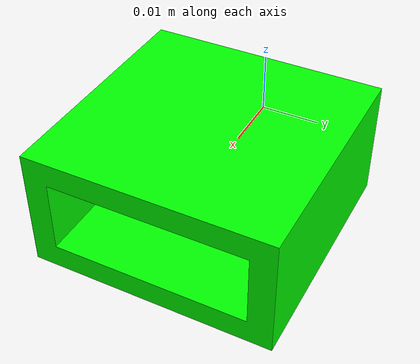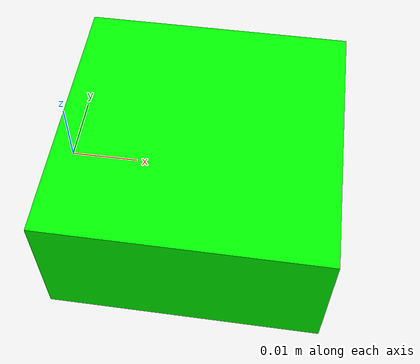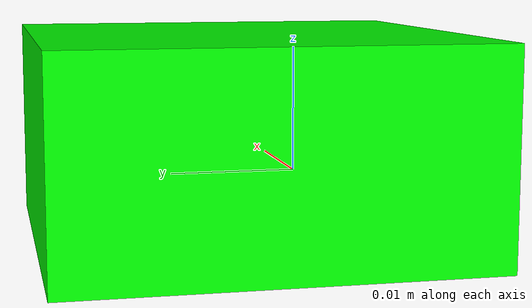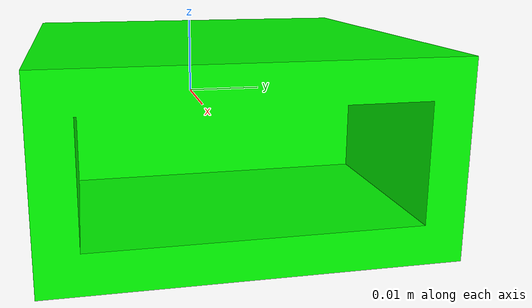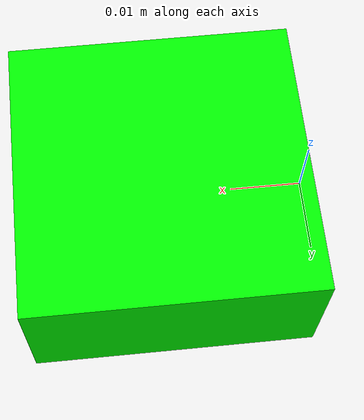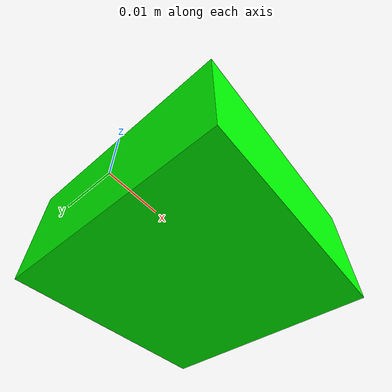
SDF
<?xml version="1.0"?>

<sdf version='1.6'>
  <model name='flash_hat'>
    <allow_auto_disable>1</allow_auto_disable>

    <link name='flash_hat'>
      <pose>0 0 0 0 0 0</pose>

      <inertial>
        <pose>0.02 0 0 0 0 0</pose>
        <mass>1.0</mass>
        <inertia>
          <ixx>0.0001667</ixx>
          <ixy>0.0</ixy>
          <iyy>0.0001667</iyy>
          <ixz>0.0</ixz>
          <iyz>0.0</iyz>
          <izz>0.0002667</izz>
        </inertia>
      </inertial>

      <visual name='flash_hat_visual'>
        <pose>0 0 0 0 0 0</pose>
        <geometry>
          <mesh>
            <uri>model://flash_hat/meshes/flash_hat_final.STL</uri>
            <scale>0.001 0.001 0.001</scale>
          </mesh>
        </geometry>
        <material>
          <ambient>0 1 0 1</ambient>
        </material>
      </visual>

      <collision name='flash_hat_collision'>
        <pose>0 0 0 0 0 0</pose>
        <geometry>
          <mesh>
            <uri>model://flash_hat/meshes/flash_hat_final.STL</uri>
            <scale>0.001 0.001 0.001</scale>
          </mesh>
        </geometry>
        <surface>
        </surface>
      </collision>

    </link>

  </model>
</sdf>
